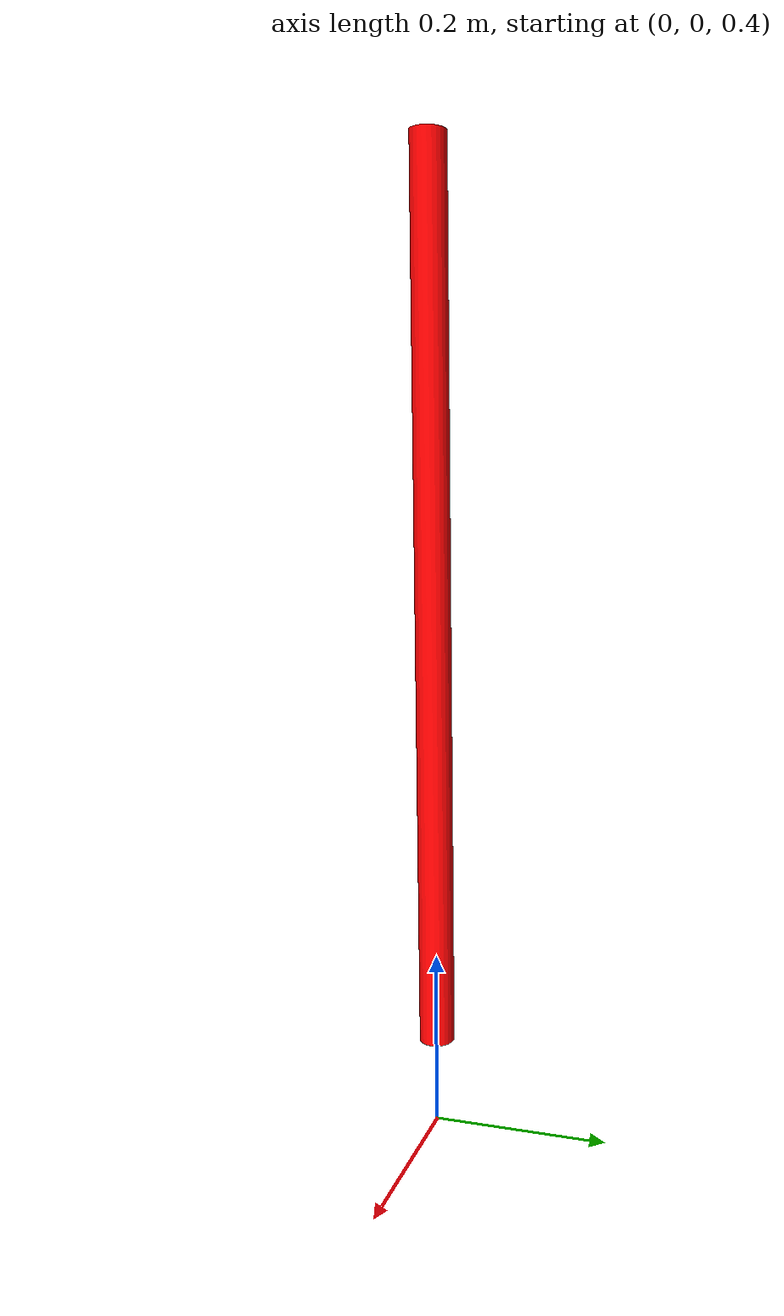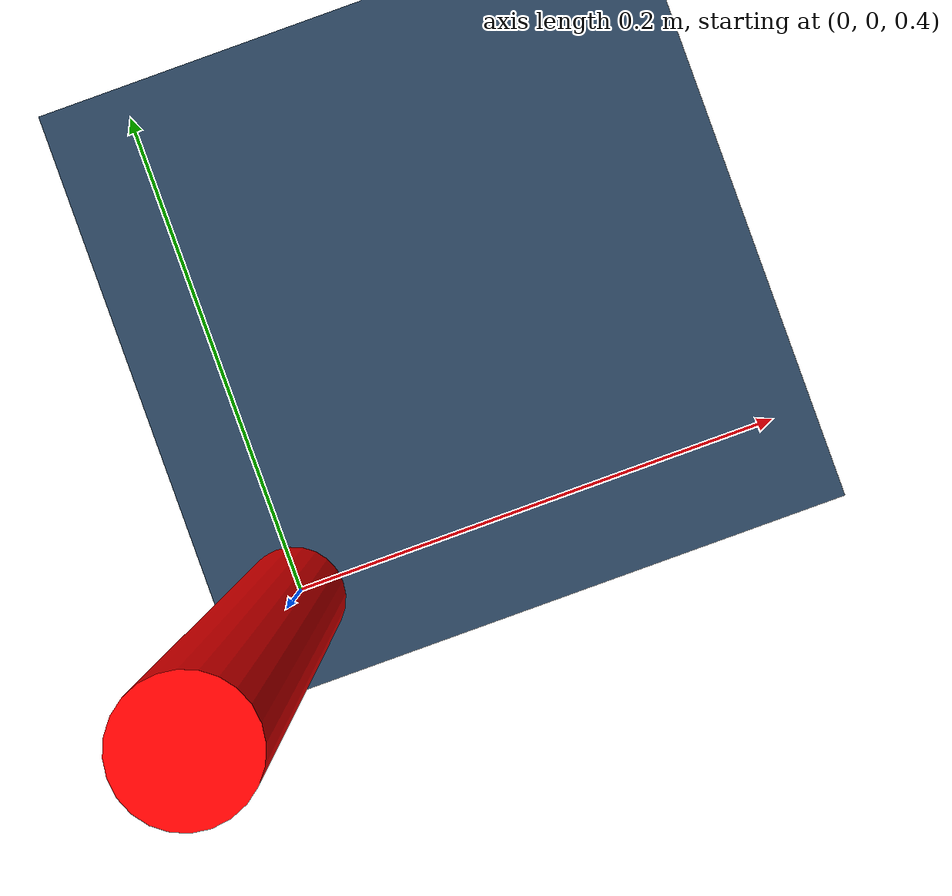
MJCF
<mujoco model="pendulum_scene">

  <include file="pendulum.xml"/>

  <statistic center="0 0 0.55" extent="1.1"/>

  <visual>
    <headlight diffuse="0.6 0.6 0.6" ambient="0.3 0.3 0.3" specular="0 0 0"/>
    <rgba haze="0.15 0.25 0.35 1"/>
    <global azimuth="150" elevation="-20"/>
  </visual>

  <asset>
    <texture type="skybox" builtin="gradient" rgb1="0.3 0.5 0.7" rgb2="0 0 0" width="512" height="3072"/>
    <texture type="2d" name="groundplane" builtin="checker" mark="edge" rgb1="0.2 0.3 0.4" rgb2="0.1 0.2 0.3"
      markrgb="0.8 0.8 0.8" width="300" height="300"/>
    <material name="groundplane" texture="groundplane" texuniform="true" texrepeat="5 5" reflectance="0.2"/>
  </asset>

  <worldbody>
    <light pos="0 0 3" dir="0 0 -1" directional="false"/>
    <geom name="floor" size="0 0 .125" type="plane" material="groundplane" conaffinity="15" condim="3"/>
  </worldbody>

</mujoco>

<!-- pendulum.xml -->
<mujoco model="pendulum">
  <worldbody>
    <body name="base" pos="0 0 0">
      <!-- Dummy base inertia: for parser testing only -->
      <inertial pos="0 0 0" mass="2" diaginertia="1 1 1"/>
      <body name="pendulum_link" pos="0 0 1.5">
        <inertial pos="0 0 -0.5" mass="1" diaginertia="0.083433 0.083433 0.0002"/>
        <joint name="pendulum_joint" pos="0 0 0" axis="0 1 0" />
        <geom name="pendulum_link_visual" size="0.02 0.5" pos="0 0 -0.5"
              type="cylinder" contype="0" conaffinity="0" group="1" density="0"
              rgba="1 0 0 1"/>
      </body>
    </body>
  </worldbody>
  <actuator>
    <motor gear="10" joint="pendulum_joint"/>
  </actuator>
</mujoco>
